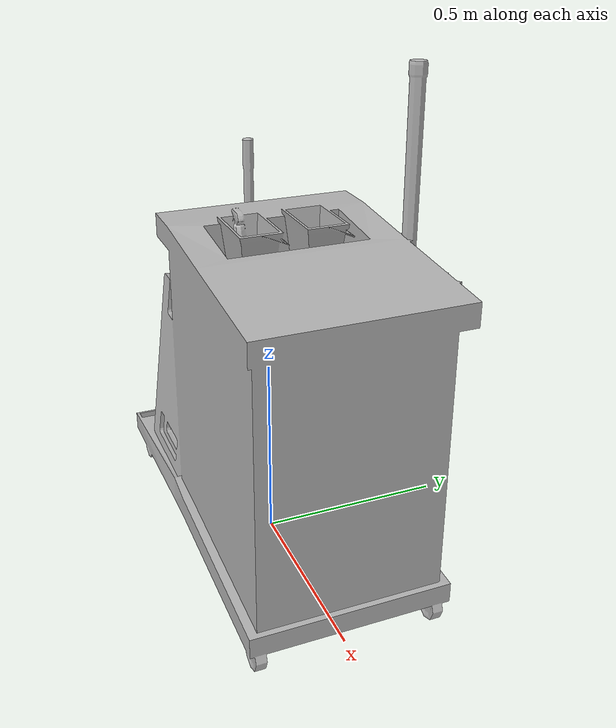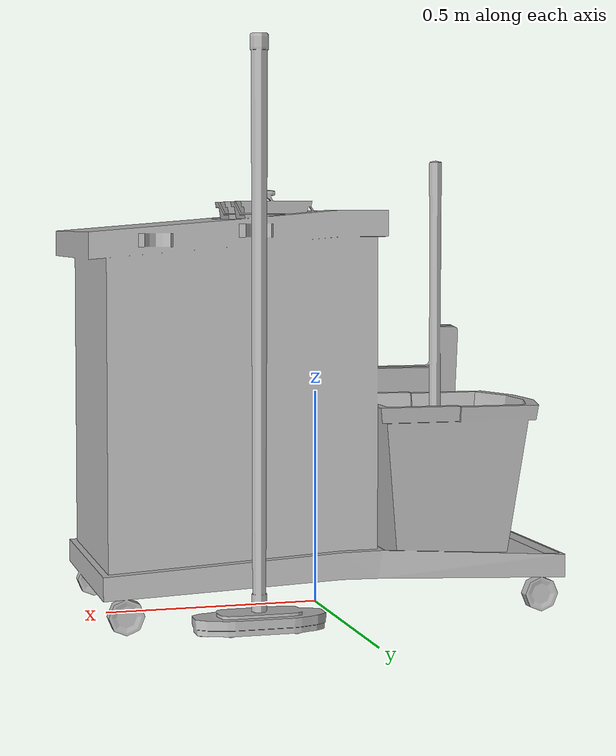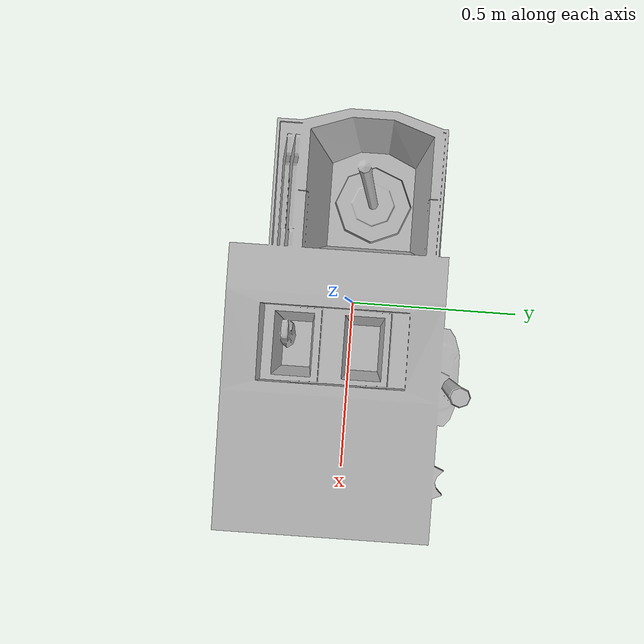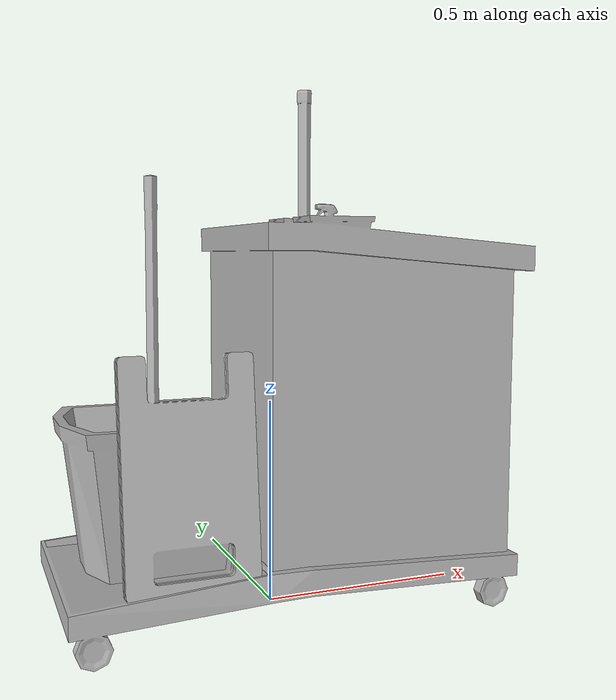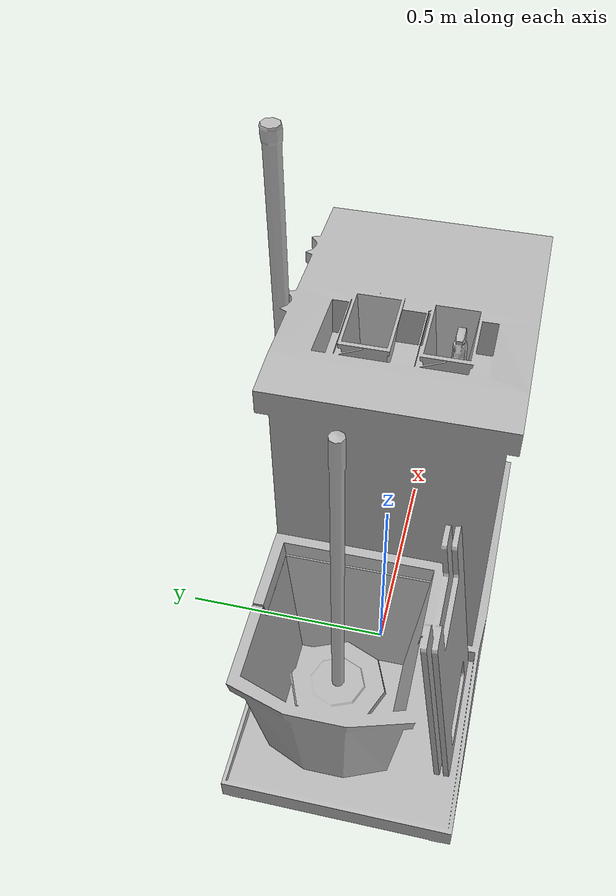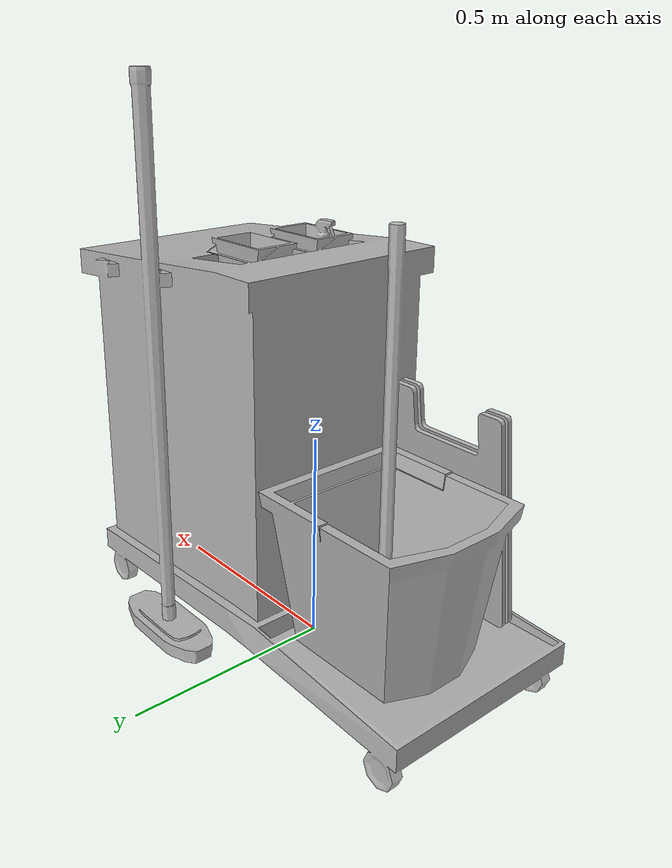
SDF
<?xml version="1.0" ?>
<sdf version="1.5">
  <model name="MopCart1">
    <link name="link">
      <pose>0 0 0 0 0 0</pose>

        <visual name="visual">
          <geometry>
            <mesh><uri>model://MopCart1/meshes/MopCart1.obj</uri></mesh>
          </geometry>
        </visual>

        <collision name="collision">
          <geometry>
            <mesh><uri>model://MopCart1/meshes/MopCart1.obj</uri></mesh>
          </geometry>
        </collision>

        <inertial>
          <mass>50</mass>
        </inertial>

    </link>
  </model>
</sdf>
